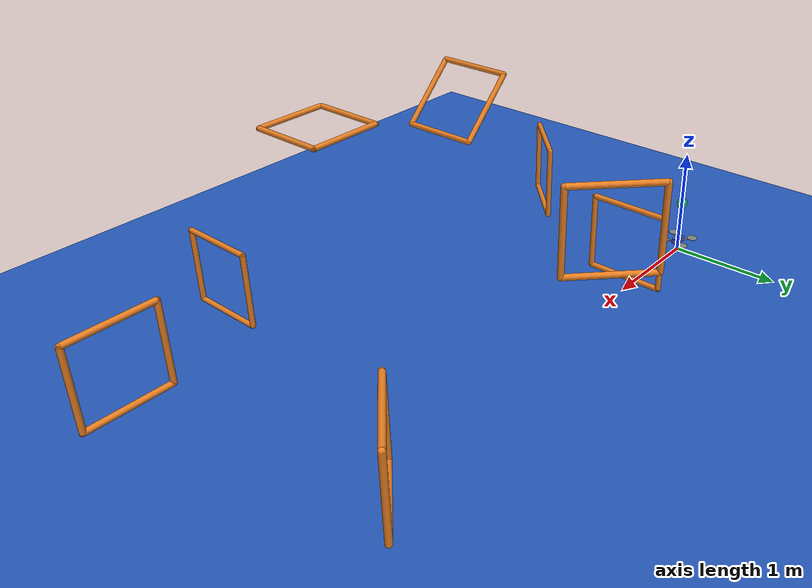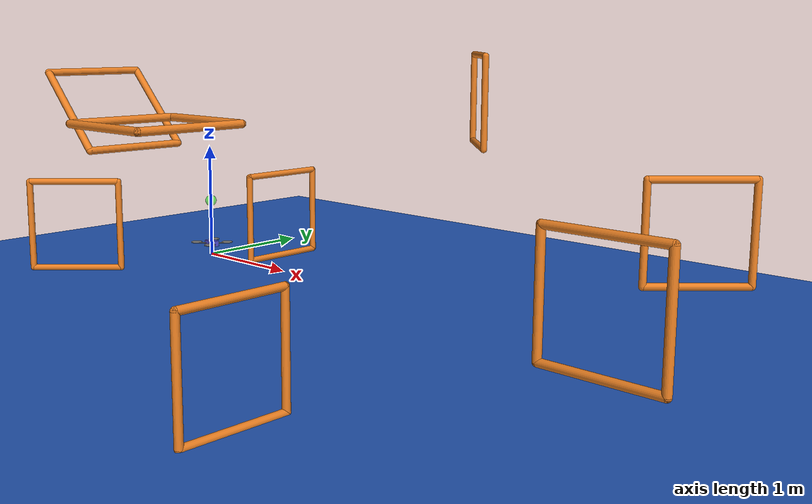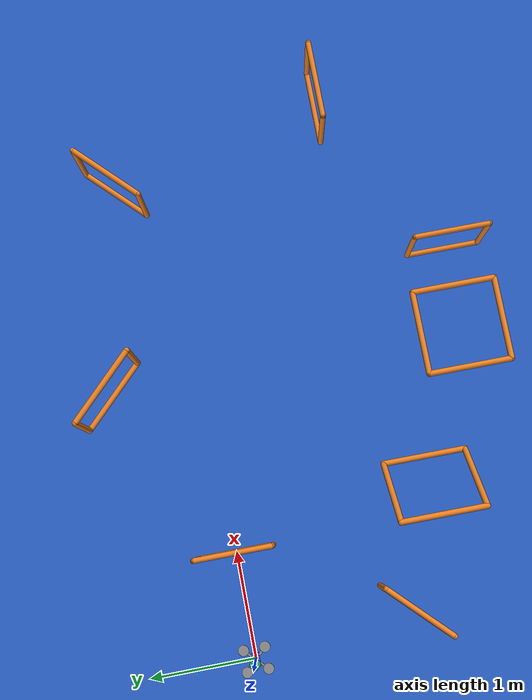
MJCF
<mujoco model="Quadrotor">
  <compiler inertiafromgeom="true" coordinate="local"/>
  <option timestep="0.01" gravity="0 0 -9.81" density="1" viscosity="1e-5" />

  <visual>
    <headlight ambient=".4 .4 .4" diffuse=".8 .8 .8" specular="0.1 0.1 0.1"/>
    <map znear=".01"/>
    <quality shadowsize="2048"/>
    <global elevation="-15"/>
  </visual>

  <asset>
    <texture name="blue_grid" type="2d" builtin="checker" rgb1=".02 .14 .44" rgb2=".27 .55 1" width="300" height="300" mark="edge" markrgb="1 1 1"/>
    <material name="blue_grid" texture="blue_grid" texrepeat="1 1" texuniform="true" reflectance=".2"/>

    <texture name="grey_grid" type="2d" builtin="checker" rgb1=".26 .26 .26" rgb2=".6 .6 .6" width="300" height="300" mark="edge" markrgb="1 1 1"/>
    <material name="grey_grid" texture="blue_grid" texrepeat="1 1" texuniform="true" reflectance=".2"/>
    <texture name="skybox" type="skybox" builtin="gradient" rgb1=".66 .79 1" rgb2=".9 .91 .93" width="800" height="800"/>

    <material name="self" rgba=".7 .5 .3 1"/>
    <material name="self_default" rgba=".7 .5 .3 1"/>
    <material name="self_highlight" rgba="0 .5 .3 1"/>
    <material name="effector" rgba=".7 .4 .2 1"/>
    <material name="effector_default" rgba=".7 .4 .2 1"/>
    <material name="effector_highlight" rgba="0 .5 .3 1"/>
    <material name="decoration" rgba=".2 .6 .3 1"/>
    <material name="eye" rgba="0 .2 1 1"/>
    <material name="target" rgba=".6 .3 .3 1"/>
    <material name="target_default" rgba=".6 .3 .3 1"/>
    <material name="target_highlight" rgba=".6 .3 .3 .4"/>
    <material name="site" rgba=".5 .5 .5 .3"/>
  </asset>

  <worldbody>
      <geom name="floor" type="plane" conaffinity="1" size="100 100 .2" material="blue_grid"/>
    <body name="goal" mocap="true" pos="0.0 0.0 0.5" quat="0.0 0.70710678 0.0 0.70710678">
      <geom type="sphere" size="0.05" contype="0" conaffinity="0" rgba="0 1 0 .5"/>
    </body>

    <!-- gait 1 -->
    <body name="gait1_left" pos="1.0 0.35 0.5" quat="1 0 0 0">
      <geom type="capsule" size="0.025 0.1 0.05" rgba="0.902 0.494 0.133 1" fromto="0.0 0 -0.35 0.0 0 0.35"/>
    </body>
    <body name="gait1_right" pos="1.0 -0.35 0.5" quat="1 0 0 0">
      <geom type="capsule" size="0.025 0.1 0.05" rgba="0.902 0.494 0.133 1" fromto="0.0 0 -0.35 0.0 0 0.35"/>
    </body>
    <body name="gait1_top" pos="1.0 0.0 0.85" quat="1 0 0 0">
      <geom type="capsule" size="0.025 0.1 0.05" rgba="0.902 0.494 0.133 1" fromto="0.0 -0.35 0.0 0.0 0.35 0.0"/>
    </body>
    <body name="gait1_bottom" pos="1.0 0.0 0.15" quat="1 0 0 0">
      <geom type="capsule" size="0.025 0.1 0.05" rgba="0.902 0.494 0.133 1" fromto="0.0 -0.35 0.0 0.0 0.35 0.0"/>
    </body>

    <!-- gait 2 -->
    <body name="gait2_left" pos="2.25 1.0 1.5" quat="0.92388 0.0 0.0 0.382683">
      <geom type="capsule" size="0.025 0.1 0.05" rgba="0.902 0.494 0.133 1" fromto="0.0 0 -0.35 0.0 0 0.35"/>
    </body>
    <body name="gait2_right" pos="2.75 0.5 1.5" quat="0.92388 0.0 0.0 0.382683">
      <geom type="capsule" size="0.025 0.1 0.05" rgba="0.902 0.494 0.133 1" fromto="0.0 0 -0.35 0.0 0 0.35"/>
    </body>
    <body name="gait2_top" pos="2.5 0.75 1.85" quat="0.92388 0.0 0.0 0.382683">
      <geom type="capsule" size="0.025 0.1 0.05" rgba="0.902 0.494 0.133 1" fromto="0.0 -0.35 0.0 0.0 0.35 0.0"/>
    </body>
    <body name="gait2_bottom" pos="2.5 0.75 1.15" quat="0.92388 0.0 0.0 0.382683">
      <geom type="capsule" size="0.025 0.1 0.05" rgba="0.902 0.494 0.133 1" fromto="0.0 -0.35 0.0 0.0 0.35 0.0"/>
    </body>

    <!-- gait 3 -->
    <body name="gait3_left" pos="4.75 0.75 0.75" quat="0.92388 0.0 0.0 -0.382683">
      <geom type="capsule" size="0.025 0.1 0.05" rgba="0.902 0.494 0.133 1" fromto="0.0 0 -0.35 0.0 0 0.35"/>
    </body>
    <body name="gait3_right" pos="4.25 0.25 0.75" quat="0.92388 0.0 0.0 -0.382683">
      <geom type="capsule" size="0.025 0.1 0.05" rgba="0.902 0.494 0.133 1" fromto="0.0 0 -0.35 0.0 0 0.35"/>
    </body>
    <body name="gait3_top" pos="4.5 0.5 1.1" quat="0.92388 0.0 0.0 -0.382683">
      <geom type="capsule" size="0.025 0.1 0.05" rgba="0.902 0.494 0.133 1" fromto="0.0 -0.35 0.0 0.0 0.35 0.0"/>
    </body>
    <body name="gait3_bottom" pos="4.5 0.5 0.4" quat="0.92388 0.0 0.0 -0.382683">
      <geom type="capsule" size="0.025 0.1 0.05" rgba="0.902 0.494 0.133 1" fromto="0.0 -0.35 0.0 0.0 0.35 0.0"/>
    </body>

    <!-- gait 4 -->
    <body name="gait4_left" pos="5.35 -1.5 0.75" quat="0.7071 0 0 0.7071">
      <geom type="capsule" size="0.025 0.1 0.05" rgba="0.902 0.494 0.133 1" fromto="0.0 0 -0.35 0.0 0 0.35"/>
    </body>
    <body name="gait4_right" pos="4.65 -1.5 0.75" quat="0.7071 0 0 0.7071">
      <geom type="capsule" size="0.025 0.1 0.05" rgba="0.902 0.494 0.133 1" fromto="0.0 0 -0.35 0.0 0 0.35"/>
    </body>
    <body name="gait4_top" pos="5.0 -1.5 1.1" quat="0.7071 0 0 0.7071">
      <geom type="capsule" size="0.025 0.1 0.05" rgba="0.902 0.494 0.133 1" fromto="0.0 -0.35 0.0 0.0 0.35 0.0"/>
    </body>
    <body name="gait4_bottom" pos="5.0 -1.5 0.4" quat="0.7071 0 0 0.7071">
      <geom type="capsule" size="0.025 0.1 0.05" rgba="0.902 0.494 0.133 1" fromto="0.0 -0.35 0.0 0.0 0.35 0.0"/>
    </body>

    <!-- gait 5 -->
    <body name="gait5_left" pos="3.5 -2.85 0.35" quat="1 0 0 0">
      <geom type="capsule" size="0.025 0.1 0.05" rgba="0.902 0.494 0.133 1" fromto="0.0 0 -0.35 0.0 0 0.35"/>
    </body>
    <body name="gait5_right" pos="3.5 -2.15 0.35" quat="1 0 0 0">
      <geom type="capsule" size="0.025 0.1 0.05" rgba="0.902 0.494 0.133 1" fromto="0.0 0 -0.35 0.0 0 0.35"/>
    </body>
    <body name="gait5_top" pos="3.5 -2.5 0.7" quat="1 0 0 0">
      <geom type="capsule" size="0.025 0.1 0.05" rgba="0.902 0.494 0.133 1" fromto="0.0 -0.35 0.0 0.0 0.35 0.0"/>
    </body>
    <body name="gait5_bottom" pos="3.5 -2.5 0.0" quat="1 0 0 0">
      <geom type="capsule" size="0.025 0.1 0.05" rgba="0.902 0.494 0.133 1" fromto="0.0 -0.35 0.0 0.0 0.35 0.0"/>
    </body>

    <!-- gait 6 -->
    <body name="gait6_left" pos="2.5 -1.9 1.5" quat="1 0 0 0">
      <geom type="capsule" size="0.025 0.1 0.05" rgba="0.902 0.494 0.133 1" fromto="-0.35 0.0 0.0 0.35 0.0 0.0"/>
    </body>
    <body name="gait6_right" pos="2.5 -2.6 1.5" quat="1 0 0 0">
      <geom type="capsule" size="0.025 0.1 0.05" rgba="0.902 0.494 0.133 1" fromto="-0.35 0.0 0.0 0.35 0.0 0.0"/>
    </body>
    <body name="gait6_top" pos="2.85 -2.25 1.5" quat="1 0 0 0">
      <geom type="capsule" size="0.025 0.1 0.05" rgba="0.902 0.494 0.133 1" fromto="0.0 -0.35 0.0 0.0 0.35 0.0"/>
    </body>
    <body name="gait6_bottom" pos="2.15 -2.25 1.5" quat="1 0 0 0">
      <geom type="capsule" size="0.025 0.1 0.05" rgba="0.902 0.494 0.133 1" fromto="0.0 -0.35 0.0 0.0 0.35 0.0"/>
    </body>

    <!-- gait 7 -->
    <body name="gait7_left" pos="1.25 -2.1 1.5" quat="0.9238 0.0 -0.382683 0.0">
      <geom type="capsule" size="0.025 0.1 0.05" rgba="0.902 0.494 0.133 1" fromto="0.0 0 -0.35 0.0 0 0.35"/>
    </body>
    <body name="gait7_right" pos="1.25 -1.4 1.5" quat="0.9238 0.0 -0.382683 0.0">
      <geom type="capsule" size="0.025 0.1 0.05" rgba="0.902 0.494 0.133 1" fromto="0.0 0 -0.35 0.0 0 0.35"/>
    </body>
    <body name="gait7_top" pos="1.0 -1.75 1.75" quat="0.9238 0.0 -0.382683 0.0">
      <geom type="capsule" size="0.025 0.1 0.05" rgba="0.902 0.494 0.133 1" fromto="0.0 -0.35 0.0 0.0 0.35 0.0"/>
    </body>
    <body name="gait7_bottom" pos="1.5 -1.75 1.25" quat="0.9238 0.0 -0.382683 0.0">
      <geom type="capsule" size="0.025 0.1 0.05" rgba="0.902 0.494 0.133 1" fromto="0.0 -0.35 0.0 0.0 0.35 0.0"/>
    </body>

    <!-- gait 8 -->
    <body name="gait8_left" pos="0.45 -1.25 0.5" quat="0.92388 0.0 0.0 -0.382683">
      <geom type="capsule" size="0.025 0.1 0.05" rgba="0.902 0.494 0.133 1" fromto="0.0 0 -0.35 0.0 0 0.35"/>
    </body>
    <body name="gait8_right" pos="-0.05 -1.75 0.5" quat="0.92388 0.0 0.0 -0.382683">
      <geom type="capsule" size="0.025 0.1 0.05" rgba="0.902 0.494 0.133 1" fromto="0.0 0 -0.35 0.0 0 0.35"/>
    </body>
    <body name="gait8_top" pos="0.2 -1.5 0.85" quat="0.92388 0.0 0.0 -0.382683">
      <geom type="capsule" size="0.025 0.1 0.05" rgba="0.902 0.494 0.133 1" fromto="0.0 -0.35 0.0 0.0 0.35 0.0"/>
    </body>
    <body name="gait8_bottom" pos="0.2 -1.5 0.15" quat="0.92388 0.0 0.0 -0.382683">
      <geom type="capsule" size="0.025 0.1 0.05" rgba="0.902 0.494 0.133 1" fromto="0.0 -0.35 0.0 0.0 0.35 0.0"/>
    </body>

    <body name="quadrotor" pos="0 0 0.1">
      <geom name="core" type="box" pos="0 0 0" quat = "1. 0. 0. 0" size="0.06 0.035 0.025"  rgba="0.3 0.3 0.8 1" mass = ".2"/>

      <geom name="a00" type="box" pos=".071 0.071 0.0" size="0.05 0.01 0.0025"  quat = ".924 0.0 0.0 0.383" rgba="0.5 0.5 0.5 1" mass = ".025"/>
      <geom name="a10" type="box" pos=".071 -0.071 0.0" size="0.05 0.01 0.0025"  quat = ".383 0.0 0.0 0.924" rgba="0.5 0.5 0.5 1" mass = ".025"/>
      <geom name="a20" type="box" pos="-0.071 -0.071 0.0" size="0.05 0.01 0.0025"  quat = "-.383 0.0 0.0 0.924" rgba="0.5 0.5 0.5 1" mass = ".025"/>
      <geom name="a30" type="box" pos="-.071 0.071 0.0" size="0.05 0.01 0.0025"  quat = ".924 0.0 0.0 -0.383" rgba="0.5 0.5 0.5 1" mass = ".025"/>

      <joint name="root"   type="free" damping="0" armature="0" pos="0 0 0" />

      <!-- Actuator sites to attach actuators  -->
            <site name="thrust" type="box" pos="0 0 0"  size="0.06 0.035 0.025"  quat = "1.0 0.0 0.0 0." rgba="0.5 0.5 0.5 1"/>
      <site name="rateX" type="box" pos="0 0 0" quat = "1. 0. 0. 0."  size="0.06 0.035 0.025" rgba="0.5 0.5 0.5 1" />
      <site name="rateY" type="box" pos="0 0 0" quat = "1. 0. 0. 0."  size="0.06 0.035 0.025" rgba="0.5 0.5 0.5 1" />
      <site name="rateZ" type="box" pos="0 0 0" quat = "1. 0. 0. 0."  size="0.06 0.035 0.025" rgba="0.5 0.5 0.5 1" />

      <!-- Thruster geometries for collisions since site's are excluded from collision checking -->
            <geom name="thruster0" type="cylinder" pos=" 0.1  0.1  0.01" size="0.05 0.0025"  rgba="0.5 0.5 0.5 1" mass = ".025"/>
            <geom name="thruster1" type="cylinder" pos=" 0.1 -0.1  0.01" size="0.05 0.0025"  rgba="0.5 0.5 0.5 1" mass = ".025"/>
            <geom name="thruster2" type="cylinder" pos="-0.1 -0.1  0.01" size="0.05 0.0025"  rgba="0.5 0.5 0.5 1" mass = ".025"/>
            <geom name="thruster3" type="cylinder" pos="-0.1  0.1  0.01" size="0.05 0.0025"  rgba="0.5 0.5 0.5 1" mass = ".025"/>
            <site name="thruster0" type="cylinder" pos=" 0.1  0.1  0.01" size="0.005 0.00025"  rgba="0.5 0.5 0.5 1"/>
            <site name="thruster1" type="cylinder" pos=" 0.1 -0.1  0.01" size="0.005 0.00025"  rgba="0.5 0.5 0.5 1"/>
            <site name="thruster2" type="cylinder" pos="-0.1 -0.1  0.01" size="0.005 0.00025"  rgba="0.5 0.5 0.5 1"/>
            <site name="thruster3" type="cylinder" pos="-0.1  0.1  0.01" size="0.005 0.00025"  rgba="0.5 0.5 0.5 1"/>

            <!-- Visualization of the coordinate frame -->
    </body>
  </worldbody>
    <actuator>
    <motor ctrllimited="true" ctrlrange="0.0 1.0" gear="0  0. 5. 0. 0. .1" site="thruster0"/>
    <motor ctrllimited="true" ctrlrange="0.0 1.0" gear="0  0. 5. 0. 0. -.1" site="thruster1"/>
    <motor ctrllimited="true" ctrlrange="0.0 1.0" gear="0  0. 5. 0. 0. .1" site="thruster2"/>
    <motor ctrllimited="true" ctrlrange="0.0 1.0" gear="0  0. 5. 0. 0. -.1" site="thruster3"/>
  </actuator>
</mujoco>
